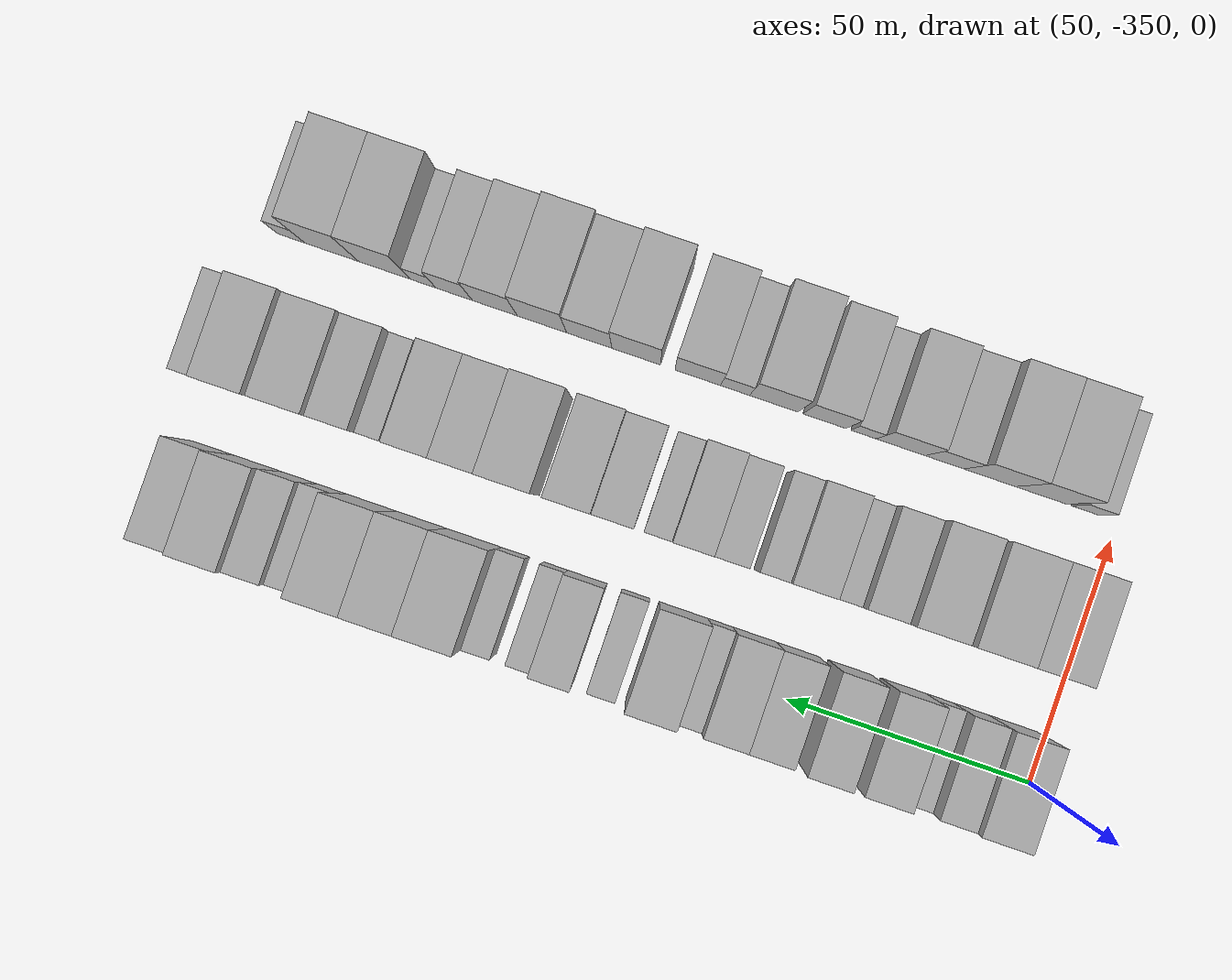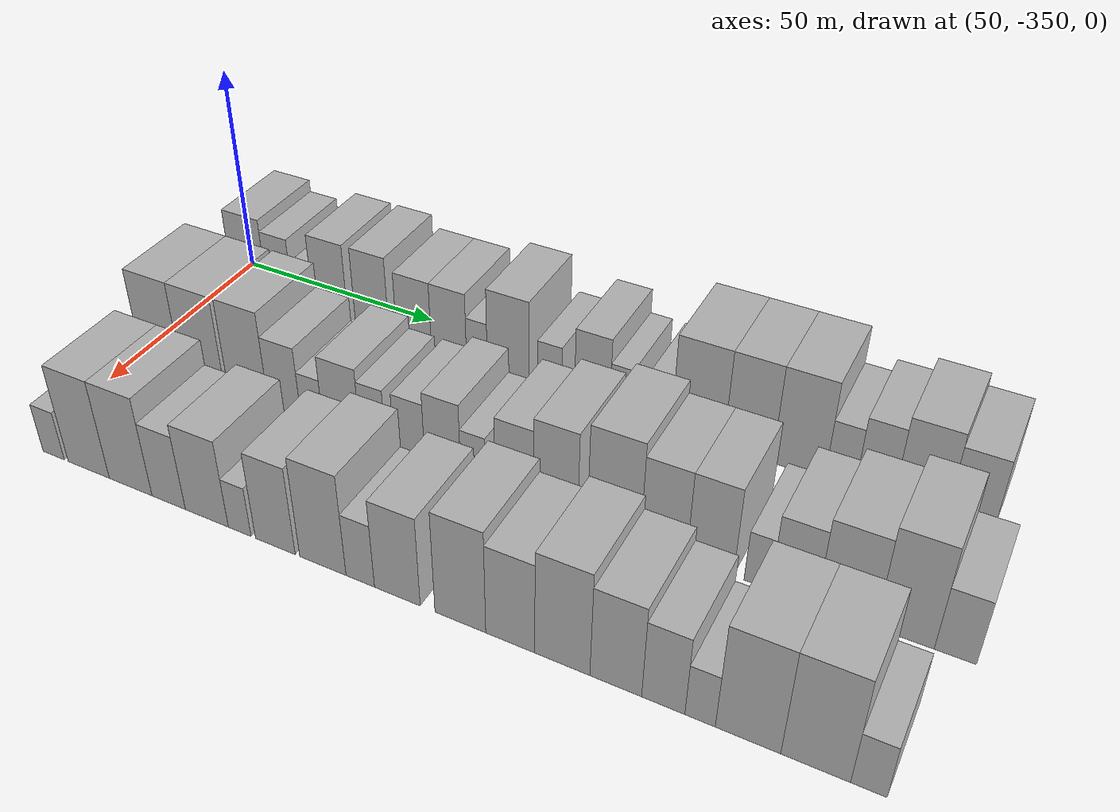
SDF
<sdf version="1.6">
 <world name="default">
  <model name="building_1">
   <static>1</static>
   <pose>50.0000 -343.0452 0 0.000000 0.000000 0.000000</pose>
   <link name="link">
    <pose>0 0 10.50 0 0 0</pose>
    <collision name="collision"><geometry><box><size>20.0000 9.9096 21.0000</size></box></geometry></collision>
    <visual name="visual">
     <cast_shadows>0</cast_shadows>
     <geometry><box><size>20.0000 9.9096 21.0000</size></box></geometry>
     <material>
      <script>
       <uri>model://HANNAS_wall/materials/scripts</uri>
       <uri>model://HANNAS_wall/materials/textures</uri>
       <name>vrc/HANNAS_wall</name>
      </script>
     </material>
    </visual>
   </link>
  </model>
  <model name="building_2">
   <static>1</static>
   <pose>50.0000 -334.4748 0 0.000000 0.000000 0.000000</pose>
   <link name="link">
    <pose>0 0 9.00 0 0 0</pose>
    <collision name="collision"><geometry><box><size>20.0000 7.2314 18.0000</size></box></geometry></collision>
    <visual name="visual">
     <cast_shadows>0</cast_shadows>
     <geometry><box><size>20.0000 7.2314 18.0000</size></box></geometry>
     <material>
      <script>
       <uri>model://HANNAS_wall/materials/scripts</uri>
       <uri>model://HANNAS_wall/materials/textures</uri>
       <name>vrc/HANNAS_wall</name>
      </script>
     </material>
    </visual>
   </link>
  </model>
  <model name="building_3">
   <static>1</static>
   <pose>50.0000 -328.0343 0 0.000000 0.000000 0.000000</pose>
   <link name="link">
    <pose>0 0 6.00 0 0 0</pose>
    <collision name="collision"><geometry><box><size>20.0000 5.6495 12.0000</size></box></geometry></collision>
    <visual name="visual">
     <cast_shadows>0</cast_shadows>
     <geometry><box><size>20.0000 5.6495 12.0000</size></box></geometry>
     <material>
      <script>
       <uri>model://HANNAS_wall/materials/scripts</uri>
       <uri>model://HANNAS_wall/materials/textures</uri>
       <name>vrc/HANNAS_wall</name>
      </script>
     </material>
    </visual>
   </link>
  </model>
  <model name="building_4">
   <static>1</static>
   <pose>50.0000 -320.5536 0 0.000000 0.000000 0.000000</pose>
   <link name="link">
    <pose>0 0 10.50 0 0 0</pose>
    <collision name="collision"><geometry><box><size>20.0000 9.3121 21.0000</size></box></geometry></collision>
    <visual name="visual">
     <cast_shadows>0</cast_shadows>
     <geometry><box><size>20.0000 9.3121 21.0000</size></box></geometry>
     <material>
      <script>
       <uri>model://HANNAS_wall/materials/scripts</uri>
       <uri>model://HANNAS_wall/materials/textures</uri>
       <name>vrc/HANNAS_wall</name>
      </script>
     </material>
    </visual>
   </link>
  </model>
  <model name="building_5">
   <static>1</static>
   <pose>50.0000 -309.4769 0 0.000000 0.000000 0.000000</pose>
   <link name="link">
    <pose>0 0 10.50 0 0 0</pose>
    <collision name="collision"><geometry><box><size>20.0000 8.8412 21.0000</size></box></geometry></collision>
    <visual name="visual">
     <cast_shadows>0</cast_shadows>
     <geometry><box><size>20.0000 8.8412 21.0000</size></box></geometry>
     <material>
      <script>
       <uri>model://HANNAS_wall/materials/scripts</uri>
       <uri>model://HANNAS_wall/materials/textures</uri>
       <name>vrc/HANNAS_wall</name>
      </script>
     </material>
    </visual>
   </link>
  </model>
  <model name="building_6">
   <static>1</static>
   <pose>50.0000 -298.6147 0 0.000000 0.000000 0.000000</pose>
   <link name="link">
    <pose>0 0 9.00 0 0 0</pose>
    <collision name="collision"><geometry><box><size>20.0000 8.8832 18.0000</size></box></geometry></collision>
    <visual name="visual">
     <cast_shadows>0</cast_shadows>
     <geometry><box><size>20.0000 8.8832 18.0000</size></box></geometry>
     <material>
      <script>
       <uri>model://HANNAS_wall/materials/scripts</uri>
       <uri>model://HANNAS_wall/materials/textures</uri>
       <name>vrc/HANNAS_wall</name>
      </script>
     </material>
    </visual>
   </link>
  </model>
  <model name="building_7">
   <static>1</static>
   <pose>50.0000 -289.7576 0 0.000000 0.000000 0.000000</pose>
   <link name="link">
    <pose>0 0 9.00 0 0 0</pose>
    <collision name="collision"><geometry><box><size>20.0000 8.8311 18.0000</size></box></geometry></collision>
    <visual name="visual">
     <cast_shadows>0</cast_shadows>
     <geometry><box><size>20.0000 8.8311 18.0000</size></box></geometry>
     <material>
      <script>
       <uri>model://HANNAS_wall/materials/scripts</uri>
       <uri>model://HANNAS_wall/materials/textures</uri>
       <name>vrc/HANNAS_wall</name>
      </script>
     </material>
    </visual>
   </link>
  </model>
  <model name="building_8">
   <static>1</static>
   <pose>50.0000 -282.7856 0 0.000000 0.000000 0.000000</pose>
   <link name="link">
    <pose>0 0 6.00 0 0 0</pose>
    <collision name="collision"><geometry><box><size>20.0000 5.1130 12.0000</size></box></geometry></collision>
    <visual name="visual">
     <cast_shadows>0</cast_shadows>
     <geometry><box><size>20.0000 5.1130 12.0000</size></box></geometry>
     <material>
      <script>
       <uri>model://HANNAS_wall/materials/scripts</uri>
       <uri>model://HANNAS_wall/materials/textures</uri>
       <name>vrc/HANNAS_wall</name>
      </script>
     </material>
    </visual>
   </link>
  </model>
  <model name="building_9">
   <static>1</static>
   <pose>50.0000 -275.1807 0 0.000000 0.000000 0.000000</pose>
   <link name="link">
    <pose>0 0 10.50 0 0 0</pose>
    <collision name="collision"><geometry><box><size>20.0000 10.0968 21.0000</size></box></geometry></collision>
    <visual name="visual">
     <cast_shadows>0</cast_shadows>
     <geometry><box><size>20.0000 10.0968 21.0000</size></box></geometry>
     <material>
      <script>
       <uri>model://HANNAS_wall/materials/scripts</uri>
       <uri>model://HANNAS_wall/materials/textures</uri>
       <name>vrc/HANNAS_wall</name>
      </script>
     </material>
    </visual>
   </link>
  </model>
  <model name="building_10">
   <static>1</static>
   <pose>50.0000 -265.2949 0 0.000000 0.000000 0.000000</pose>
   <link name="link">
    <pose>0 0 6.00 0 0 0</pose>
    <collision name="collision"><geometry><box><size>20.0000 5.6747 12.0000</size></box></geometry></collision>
    <visual name="visual">
     <cast_shadows>0</cast_shadows>
     <geometry><box><size>20.0000 5.6747 12.0000</size></box></geometry>
     <material>
      <script>
       <uri>model://HANNAS_wall/materials/scripts</uri>
       <uri>model://HANNAS_wall/materials/textures</uri>
       <name>vrc/HANNAS_wall</name>
      </script>
     </material>
    </visual>
   </link>
  </model>
  <model name="building_11">
   <static>1</static>
   <pose>50.0000 -255.3975 0 0.000000 0.000000 0.000000</pose>
   <link name="link">
    <pose>0 0 9.00 0 0 0</pose>
    <collision name="collision"><geometry><box><size>20.0000 8.1202 18.0000</size></box></geometry></collision>
    <visual name="visual">
     <cast_shadows>0</cast_shadows>
     <geometry><box><size>20.0000 8.1202 18.0000</size></box></geometry>
     <material>
      <script>
       <uri>model://HANNAS_wall/materials/scripts</uri>
       <uri>model://HANNAS_wall/materials/textures</uri>
       <name>vrc/HANNAS_wall</name>
      </script>
     </material>
    </visual>
   </link>
  </model>
  <model name="building_12">
   <static>1</static>
   <pose>50.0000 -248.8593 0 0.000000 0.000000 0.000000</pose>
   <link name="link">
    <pose>0 0 6.00 0 0 0</pose>
    <collision name="collision"><geometry><box><size>20.0000 4.9560 12.0000</size></box></geometry></collision>
    <visual name="visual">
     <cast_shadows>0</cast_shadows>
     <geometry><box><size>20.0000 4.9560 12.0000</size></box></geometry>
     <material>
      <script>
       <uri>model://HANNAS_wall/materials/scripts</uri>
       <uri>model://HANNAS_wall/materials/textures</uri>
       <name>vrc/HANNAS_wall</name>
      </script>
     </material>
    </visual>
   </link>
  </model>
  <model name="building_13">
   <static>1</static>
   <pose>50.0000 -240.5026 0 0.000000 0.000000 0.000000</pose>
   <link name="link">
    <pose>0 0 6.00 0 0 0</pose>
    <collision name="collision"><geometry><box><size>20.0000 5.7574 12.0000</size></box></geometry></collision>
    <visual name="visual">
     <cast_shadows>0</cast_shadows>
     <geometry><box><size>20.0000 5.7574 12.0000</size></box></geometry>
     <material>
      <script>
       <uri>model://HANNAS_wall/materials/scripts</uri>
       <uri>model://HANNAS_wall/materials/textures</uri>
       <name>vrc/HANNAS_wall</name>
      </script>
     </material>
    </visual>
   </link>
  </model>
  <model name="building_14">
   <static>1</static>
   <pose>50.0000 -231.9556 0 0.000000 0.000000 0.000000</pose>
   <link name="link">
    <pose>0 0 12.00 0 0 0</pose>
    <collision name="collision"><geometry><box><size>20.0000 11.3367 24.0000</size></box></geometry></collision>
    <visual name="visual">
     <cast_shadows>0</cast_shadows>
     <geometry><box><size>20.0000 11.3367 24.0000</size></box></geometry>
     <material>
      <script>
       <uri>model://HANNAS_wall/materials/scripts</uri>
       <uri>model://HANNAS_wall/materials/textures</uri>
       <name>vrc/HANNAS_wall</name>
      </script>
     </material>
    </visual>
   </link>
  </model>
  <model name="building_15">
   <static>1</static>
   <pose>50.0000 -221.1901 0 0.000000 0.000000 0.000000</pose>
   <link name="link">
    <pose>0 0 12.00 0 0 0</pose>
    <collision name="collision"><geometry><box><size>20.0000 10.1943 24.0000</size></box></geometry></collision>
    <visual name="visual">
     <cast_shadows>0</cast_shadows>
     <geometry><box><size>20.0000 10.1943 24.0000</size></box></geometry>
     <material>
      <script>
       <uri>model://HANNAS_wall/materials/scripts</uri>
       <uri>model://HANNAS_wall/materials/textures</uri>
       <name>vrc/HANNAS_wall</name>
      </script>
     </material>
    </visual>
   </link>
  </model>
  <model name="building_16">
   <static>1</static>
   <pose>50.0000 -210.7837 0 0.000000 0.000000 0.000000</pose>
   <link name="link">
    <pose>0 0 12.00 0 0 0</pose>
    <collision name="collision"><geometry><box><size>20.0000 10.6183 24.0000</size></box></geometry></collision>
    <visual name="visual">
     <cast_shadows>0</cast_shadows>
     <geometry><box><size>20.0000 10.6183 24.0000</size></box></geometry>
     <material>
      <script>
       <uri>model://HANNAS_wall/materials/scripts</uri>
       <uri>model://HANNAS_wall/materials/textures</uri>
       <name>vrc/HANNAS_wall</name>
      </script>
     </material>
    </visual>
   </link>
  </model>
  <model name="building_17">
   <static>1</static>
   <pose>50.0000 -202.4725 0 0.000000 0.000000 0.000000</pose>
   <link name="link">
    <pose>0 0 7.50 0 0 0</pose>
    <collision name="collision"><geometry><box><size>20.0000 6.0041 15.0000</size></box></geometry></collision>
    <visual name="visual">
     <cast_shadows>0</cast_shadows>
     <geometry><box><size>20.0000 6.0041 15.0000</size></box></geometry>
     <material>
      <script>
       <uri>model://HANNAS_wall/materials/scripts</uri>
       <uri>model://HANNAS_wall/materials/textures</uri>
       <name>vrc/HANNAS_wall</name>
      </script>
     </material>
    </visual>
   </link>
  </model>
  <model name="building_18">
   <static>1</static>
   <pose>50.0000 -195.7502 0 0.000000 0.000000 0.000000</pose>
   <link name="link">
    <pose>0 0 9.00 0 0 0</pose>
    <collision name="collision"><geometry><box><size>20.0000 7.4406 18.0000</size></box></geometry></collision>
    <visual name="visual">
     <cast_shadows>0</cast_shadows>
     <geometry><box><size>20.0000 7.4406 18.0000</size></box></geometry>
     <material>
      <script>
       <uri>model://HANNAS_wall/materials/scripts</uri>
       <uri>model://HANNAS_wall/materials/textures</uri>
       <name>vrc/HANNAS_wall</name>
      </script>
     </material>
    </visual>
   </link>
  </model>
  <model name="building_19">
   <static>1</static>
   <pose>50.0000 -187.0069 0 0.000000 0.000000 0.000000</pose>
   <link name="link">
    <pose>0 0 10.50 0 0 0</pose>
    <collision name="collision"><geometry><box><size>20.0000 10.0460 21.0000</size></box></geometry></collision>
    <visual name="visual">
     <cast_shadows>0</cast_shadows>
     <geometry><box><size>20.0000 10.0460 21.0000</size></box></geometry>
     <material>
      <script>
       <uri>model://HANNAS_wall/materials/scripts</uri>
       <uri>model://HANNAS_wall/materials/textures</uri>
       <name>vrc/HANNAS_wall</name>
      </script>
     </material>
    </visual>
   </link>
  </model>
  <model name="building_20">
   <static>1</static>
   <pose>50.0000 -177.6431 0 0.000000 0.000000 0.000000</pose>
   <link name="link">
    <pose>0 0 9.00 0 0 0</pose>
    <collision name="collision"><geometry><box><size>20.0000 8.6817 18.0000</size></box></geometry></collision>
    <visual name="visual">
     <cast_shadows>0</cast_shadows>
     <geometry><box><size>20.0000 8.6817 18.0000</size></box></geometry>
     <material>
      <script>
       <uri>model://HANNAS_wall/materials/scripts</uri>
       <uri>model://HANNAS_wall/materials/textures</uri>
       <name>vrc/HANNAS_wall</name>
      </script>
     </material>
    </visual>
   </link>
  </model>
  <model name="building_80">
   <static>1</static>
   <pose>82.0000 -342.5080 0 0.000000 0.000000 0.000000</pose>
   <link name="link">
    <pose>0 0 12.00 0 0 0</pose>
    <collision name="collision"><geometry><box><size>20.0000 10.9841 24.0000</size></box></geometry></collision>
    <visual name="visual">
     <cast_shadows>0</cast_shadows>
     <geometry><box><size>20.0000 10.9841 24.0000</size></box></geometry>
     <material>
      <script>
       <uri>model://HANNAS_wall/materials/scripts</uri>
       <uri>model://HANNAS_wall/materials/textures</uri>
       <name>vrc/HANNAS_wall</name>
      </script>
     </material>
    </visual>
   </link>
  </model>
  <model name="building_81">
   <static>1</static>
   <pose>82.0000 -331.3608 0 0.000000 0.000000 0.000000</pose>
   <link name="link">
    <pose>0 0 12.00 0 0 0</pose>
    <collision name="collision"><geometry><box><size>20.0000 11.3103 24.0000</size></box></geometry></collision>
    <visual name="visual">
     <cast_shadows>0</cast_shadows>
     <geometry><box><size>20.0000 11.3103 24.0000</size></box></geometry>
     <material>
      <script>
       <uri>model://HANNAS_wall/materials/scripts</uri>
       <uri>model://HANNAS_wall/materials/textures</uri>
       <name>vrc/HANNAS_wall</name>
      </script>
     </material>
    </visual>
   </link>
  </model>
  <model name="building_82">
   <static>1</static>
   <pose>82.0000 -319.5264 0 0.000000 0.000000 0.000000</pose>
   <link name="link">
    <pose>0 0 12.00 0 0 0</pose>
    <collision name="collision"><geometry><box><size>20.0000 10.3584 24.0000</size></box></geometry></collision>
    <visual name="visual">
     <cast_shadows>0</cast_shadows>
     <geometry><box><size>20.0000 10.3584 24.0000</size></box></geometry>
     <material>
      <script>
       <uri>model://HANNAS_wall/materials/scripts</uri>
       <uri>model://HANNAS_wall/materials/textures</uri>
       <name>vrc/HANNAS_wall</name>
      </script>
     </material>
    </visual>
   </link>
  </model>
  <model name="building_83">
   <static>1</static>
   <pose>82.0000 -310.2610 0 0.000000 0.000000 0.000000</pose>
   <link name="link">
    <pose>0 0 9.00 0 0 0</pose>
    <collision name="collision"><geometry><box><size>20.0000 8.1723 18.0000</size></box></geometry></collision>
    <visual name="visual">
     <cast_shadows>0</cast_shadows>
     <geometry><box><size>20.0000 8.1723 18.0000</size></box></geometry>
     <material>
      <script>
       <uri>model://HANNAS_wall/materials/scripts</uri>
       <uri>model://HANNAS_wall/materials/textures</uri>
       <name>vrc/HANNAS_wall</name>
      </script>
     </material>
    </visual>
   </link>
  </model>
  <model name="building_84">
   <static>1</static>
   <pose>82.0000 -303.4239 0 0.000000 0.000000 0.000000</pose>
   <link name="link">
    <pose>0 0 6.00 0 0 0</pose>
    <collision name="collision"><geometry><box><size>20.0000 5.5020 12.0000</size></box></geometry></collision>
    <visual name="visual">
     <cast_shadows>0</cast_shadows>
     <geometry><box><size>20.0000 5.5020 12.0000</size></box></geometry>
     <material>
      <script>
       <uri>model://HANNAS_wall/materials/scripts</uri>
       <uri>model://HANNAS_wall/materials/textures</uri>
       <name>vrc/HANNAS_wall</name>
      </script>
     </material>
    </visual>
   </link>
  </model>
  <model name="building_85">
   <static>1</static>
   <pose>82.0000 -296.1820 0 0.000000 0.000000 0.000000</pose>
   <link name="link">
    <pose>0 0 9.00 0 0 0</pose>
    <collision name="collision"><geometry><box><size>20.0000 8.9817 18.0000</size></box></geometry></collision>
    <visual name="visual">
     <cast_shadows>0</cast_shadows>
     <geometry><box><size>20.0000 8.9817 18.0000</size></box></geometry>
     <material>
      <script>
       <uri>model://HANNAS_wall/materials/scripts</uri>
       <uri>model://HANNAS_wall/materials/textures</uri>
       <name>vrc/HANNAS_wall</name>
      </script>
     </material>
    </visual>
   </link>
  </model>
  <model name="building_86">
   <static>1</static>
   <pose>82.0000 -288.6605 0 0.000000 0.000000 0.000000</pose>
   <link name="link">
    <pose>0 0 7.50 0 0 0</pose>
    <collision name="collision"><geometry><box><size>20.0000 6.0614 15.0000</size></box></geometry></collision>
    <visual name="visual">
     <cast_shadows>0</cast_shadows>
     <geometry><box><size>20.0000 6.0614 15.0000</size></box></geometry>
     <material>
      <script>
       <uri>model://HANNAS_wall/materials/scripts</uri>
       <uri>model://HANNAS_wall/materials/textures</uri>
       <name>vrc/HANNAS_wall</name>
      </script>
     </material>
    </visual>
   </link>
  </model>
  <model name="building_87">
   <static>1</static>
   <pose>82.0000 -280.0984 0 0.000000 0.000000 0.000000</pose>
   <link name="link">
    <pose>0 0 7.50 0 0 0</pose>
    <collision name="collision"><geometry><box><size>20.0000 7.0628 15.0000</size></box></geometry></collision>
    <visual name="visual">
     <cast_shadows>0</cast_shadows>
     <geometry><box><size>20.0000 7.0628 15.0000</size></box></geometry>
     <material>
      <script>
       <uri>model://HANNAS_wall/materials/scripts</uri>
       <uri>model://HANNAS_wall/materials/textures</uri>
       <name>vrc/HANNAS_wall</name>
      </script>
     </material>
    </visual>
   </link>
  </model>
  <model name="building_88">
   <static>1</static>
   <pose>82.0000 -272.5216 0 0.000000 0.000000 0.000000</pose>
   <link name="link">
    <pose>0 0 9.00 0 0 0</pose>
    <collision name="collision"><geometry><box><size>20.0000 8.0907 18.0000</size></box></geometry></collision>
    <visual name="visual">
     <cast_shadows>0</cast_shadows>
     <geometry><box><size>20.0000 8.0907 18.0000</size></box></geometry>
     <material>
      <script>
       <uri>model://HANNAS_wall/materials/scripts</uri>
       <uri>model://HANNAS_wall/materials/textures</uri>
       <name>vrc/HANNAS_wall</name>
      </script>
     </material>
    </visual>
   </link>
  </model>
  <model name="building_89">
   <static>1</static>
   <pose>82.0000 -265.6881 0 0.000000 0.000000 0.000000</pose>
   <link name="link">
    <pose>0 0 6.00 0 0 0</pose>
    <collision name="collision"><geometry><box><size>20.0000 5.5764 12.0000</size></box></geometry></collision>
    <visual name="visual">
     <cast_shadows>0</cast_shadows>
     <geometry><box><size>20.0000 5.5764 12.0000</size></box></geometry>
     <material>
      <script>
       <uri>model://HANNAS_wall/materials/scripts</uri>
       <uri>model://HANNAS_wall/materials/textures</uri>
       <name>vrc/HANNAS_wall</name>
      </script>
     </material>
    </visual>
   </link>
  </model>
  <model name="building_90">
   <static>1</static>
   <pose>82.0000 -256.7546 0 0.000000 0.000000 0.000000</pose>
   <link name="link">
    <pose>0 0 9.00 0 0 0</pose>
    <collision name="collision"><geometry><box><size>20.0000 8.2907 18.0000</size></box></geometry></collision>
    <visual name="visual">
     <cast_shadows>0</cast_shadows>
     <geometry><box><size>20.0000 8.2907 18.0000</size></box></geometry>
     <material>
      <script>
       <uri>model://HANNAS_wall/materials/scripts</uri>
       <uri>model://HANNAS_wall/materials/textures</uri>
       <name>vrc/HANNAS_wall</name>
      </script>
     </material>
    </visual>
   </link>
  </model>
  <model name="building_91">
   <static>1</static>
   <pose>82.0000 -247.9274 0 0.000000 0.000000 0.000000</pose>
   <link name="link">
    <pose>0 0 10.50 0 0 0</pose>
    <collision name="collision"><geometry><box><size>20.0000 9.3637 21.0000</size></box></geometry></collision>
    <visual name="visual">
     <cast_shadows>0</cast_shadows>
     <geometry><box><size>20.0000 9.3637 21.0000</size></box></geometry>
     <material>
      <script>
       <uri>model://HANNAS_wall/materials/scripts</uri>
       <uri>model://HANNAS_wall/materials/textures</uri>
       <name>vrc/HANNAS_wall</name>
      </script>
     </material>
    </visual>
   </link>
  </model>
  <model name="building_92">
   <static>1</static>
   <pose>82.0000 -235.8393 0 0.000000 0.000000 0.000000</pose>
   <link name="link">
    <pose>0 0 12.00 0 0 0</pose>
    <collision name="collision"><geometry><box><size>20.0000 10.8125 24.0000</size></box></geometry></collision>
    <visual name="visual">
     <cast_shadows>0</cast_shadows>
     <geometry><box><size>20.0000 10.8125 24.0000</size></box></geometry>
     <material>
      <script>
       <uri>model://HANNAS_wall/materials/scripts</uri>
       <uri>model://HANNAS_wall/materials/textures</uri>
       <name>vrc/HANNAS_wall</name>
      </script>
     </material>
    </visual>
   </link>
  </model>
  <model name="building_93">
   <static>1</static>
   <pose>82.0000 -225.8614 0 0.000000 0.000000 0.000000</pose>
   <link name="link">
    <pose>0 0 10.50 0 0 0</pose>
    <collision name="collision"><geometry><box><size>20.0000 9.1434 21.0000</size></box></geometry></collision>
    <visual name="visual">
     <cast_shadows>0</cast_shadows>
     <geometry><box><size>20.0000 9.1434 21.0000</size></box></geometry>
     <material>
      <script>
       <uri>model://HANNAS_wall/materials/scripts</uri>
       <uri>model://HANNAS_wall/materials/textures</uri>
       <name>vrc/HANNAS_wall</name>
      </script>
     </material>
    </visual>
   </link>
  </model>
  <model name="building_94">
   <static>1</static>
   <pose>82.0000 -216.7778 0 0.000000 0.000000 0.000000</pose>
   <link name="link">
    <pose>0 0 10.50 0 0 0</pose>
    <collision name="collision"><geometry><box><size>20.0000 9.0239 21.0000</size></box></geometry></collision>
    <visual name="visual">
     <cast_shadows>0</cast_shadows>
     <geometry><box><size>20.0000 9.0239 21.0000</size></box></geometry>
     <material>
      <script>
       <uri>model://HANNAS_wall/materials/scripts</uri>
       <uri>model://HANNAS_wall/materials/textures</uri>
       <name>vrc/HANNAS_wall</name>
      </script>
     </material>
    </visual>
   </link>
  </model>
  <model name="building_95">
   <static>1</static>
   <pose>82.0000 -207.7935 0 0.000000 0.000000 0.000000</pose>
   <link name="link">
    <pose>0 0 6.00 0 0 0</pose>
    <collision name="collision"><geometry><box><size>20.0000 4.9447 12.0000</size></box></geometry></collision>
    <visual name="visual">
     <cast_shadows>0</cast_shadows>
     <geometry><box><size>20.0000 4.9447 12.0000</size></box></geometry>
     <material>
      <script>
       <uri>model://HANNAS_wall/materials/scripts</uri>
       <uri>model://HANNAS_wall/materials/textures</uri>
       <name>vrc/HANNAS_wall</name>
      </script>
     </material>
    </visual>
   </link>
  </model>
  <model name="building_96">
   <static>1</static>
   <pose>82.0000 -201.1138 0 0.000000 0.000000 0.000000</pose>
   <link name="link">
    <pose>0 0 9.00 0 0 0</pose>
    <collision name="collision"><geometry><box><size>20.0000 8.4147 18.0000</size></box></geometry></collision>
    <visual name="visual">
     <cast_shadows>0</cast_shadows>
     <geometry><box><size>20.0000 8.4147 18.0000</size></box></geometry>
     <material>
      <script>
       <uri>model://HANNAS_wall/materials/scripts</uri>
       <uri>model://HANNAS_wall/materials/textures</uri>
       <name>vrc/HANNAS_wall</name>
      </script>
     </material>
    </visual>
   </link>
  </model>
  <model name="building_97">
   <static>1</static>
   <pose>82.0000 -191.6605 0 0.000000 0.000000 0.000000</pose>
   <link name="link">
    <pose>0 0 10.50 0 0 0</pose>
    <collision name="collision"><geometry><box><size>20.0000 10.4920 21.0000</size></box></geometry></collision>
    <visual name="visual">
     <cast_shadows>0</cast_shadows>
     <geometry><box><size>20.0000 10.4920 21.0000</size></box></geometry>
     <material>
      <script>
       <uri>model://HANNAS_wall/materials/scripts</uri>
       <uri>model://HANNAS_wall/materials/textures</uri>
       <name>vrc/HANNAS_wall</name>
      </script>
     </material>
    </visual>
   </link>
  </model>
  <model name="building_98">
   <static>1</static>
   <pose>82.0000 -181.3536 0 0.000000 0.000000 0.000000</pose>
   <link name="link">
    <pose>0 0 12.00 0 0 0</pose>
    <collision name="collision"><geometry><box><size>20.0000 10.1219 24.0000</size></box></geometry></collision>
    <visual name="visual">
     <cast_shadows>0</cast_shadows>
     <geometry><box><size>20.0000 10.1219 24.0000</size></box></geometry>
     <material>
      <script>
       <uri>model://HANNAS_wall/materials/scripts</uri>
       <uri>model://HANNAS_wall/materials/textures</uri>
       <name>vrc/HANNAS_wall</name>
      </script>
     </material>
    </visual>
   </link>
  </model>
  <model name="building_99">
   <static>1</static>
   <pose>82.0000 -172.7580 0 0.000000 0.000000 0.000000</pose>
   <link name="link">
    <pose>0 0 7.50 0 0 0</pose>
    <collision name="collision"><geometry><box><size>20.0000 7.0692 15.0000</size></box></geometry></collision>
    <visual name="visual">
     <cast_shadows>0</cast_shadows>
     <geometry><box><size>20.0000 7.0692 15.0000</size></box></geometry>
     <material>
      <script>
       <uri>model://HANNAS_wall/materials/scripts</uri>
       <uri>model://HANNAS_wall/materials/textures</uri>
       <name>vrc/HANNAS_wall</name>
      </script>
     </material>
    </visual>
   </link>
  </model>
  <model name="building_159">
   <static>1</static>
   <pose>114.0000 -343.2105 0 0.000000 0.000000 0.000000</pose>
   <link name="link">
    <pose>0 0 6.00 0 0 0</pose>
    <collision name="collision"><geometry><box><size>20.0000 5.5791 12.0000</size></box></geometry></collision>
    <visual name="visual">
     <cast_shadows>0</cast_shadows>
     <geometry><box><size>20.0000 5.5791 12.0000</size></box></geometry>
     <material>
      <script>
       <uri>model://HANNAS_wall/materials/scripts</uri>
       <uri>model://HANNAS_wall/materials/textures</uri>
       <name>vrc/HANNAS_wall</name>
      </script>
     </material>
    </visual>
   </link>
  </model>
  <model name="building_160">
   <static>1</static>
   <pose>114.0000 -334.1525 0 0.000000 0.000000 0.000000</pose>
   <link name="link">
    <pose>0 0 12.00 0 0 0</pose>
    <collision name="collision"><geometry><box><size>20.0000 10.5370 24.0000</size></box></geometry></collision>
    <visual name="visual">
     <cast_shadows>0</cast_shadows>
     <geometry><box><size>20.0000 10.5370 24.0000</size></box></geometry>
     <material>
      <script>
       <uri>model://HANNAS_wall/materials/scripts</uri>
       <uri>model://HANNAS_wall/materials/textures</uri>
       <name>vrc/HANNAS_wall</name>
      </script>
     </material>
    </visual>
   </link>
  </model>
  <model name="building_161">
   <static>1</static>
   <pose>114.0000 -323.5664 0 0.000000 0.000000 0.000000</pose>
   <link name="link">
    <pose>0 0 12.00 0 0 0</pose>
    <collision name="collision"><geometry><box><size>20.0000 10.6351 24.0000</size></box></geometry></collision>
    <visual name="visual">
     <cast_shadows>0</cast_shadows>
     <geometry><box><size>20.0000 10.6351 24.0000</size></box></geometry>
     <material>
      <script>
       <uri>model://HANNAS_wall/materials/scripts</uri>
       <uri>model://HANNAS_wall/materials/textures</uri>
       <name>vrc/HANNAS_wall</name>
      </script>
     </material>
    </visual>
   </link>
  </model>
  <model name="building_162">
   <static>1</static>
   <pose>114.0000 -314.2177 0 0.000000 0.000000 0.000000</pose>
   <link name="link">
    <pose>0 0 9.00 0 0 0</pose>
    <collision name="collision"><geometry><box><size>20.0000 8.0623 18.0000</size></box></geometry></collision>
    <visual name="visual">
     <cast_shadows>0</cast_shadows>
     <geometry><box><size>20.0000 8.0623 18.0000</size></box></geometry>
     <material>
      <script>
       <uri>model://HANNAS_wall/materials/scripts</uri>
       <uri>model://HANNAS_wall/materials/textures</uri>
       <name>vrc/HANNAS_wall</name>
      </script>
     </material>
    </visual>
   </link>
  </model>
  <model name="building_163">
   <static>1</static>
   <pose>114.0000 -305.1220 0 0.000000 0.000000 0.000000</pose>
   <link name="link">
    <pose>0 0 10.50 0 0 0</pose>
    <collision name="collision"><geometry><box><size>20.0000 10.1291 21.0000</size></box></geometry></collision>
    <visual name="visual">
     <cast_shadows>0</cast_shadows>
     <geometry><box><size>20.0000 10.1291 21.0000</size></box></geometry>
     <material>
      <script>
       <uri>model://HANNAS_wall/materials/scripts</uri>
       <uri>model://HANNAS_wall/materials/textures</uri>
       <name>vrc/HANNAS_wall</name>
      </script>
     </material>
    </visual>
   </link>
  </model>
  <model name="building_164">
   <static>1</static>
   <pose>114.0000 -297.4424 0 0.000000 0.000000 0.000000</pose>
   <link name="link">
    <pose>0 0 6.00 0 0 0</pose>
    <collision name="collision"><geometry><box><size>20.0000 5.2300 12.0000</size></box></geometry></collision>
    <visual name="visual">
     <cast_shadows>0</cast_shadows>
     <geometry><box><size>20.0000 5.2300 12.0000</size></box></geometry>
     <material>
      <script>
       <uri>model://HANNAS_wall/materials/scripts</uri>
       <uri>model://HANNAS_wall/materials/textures</uri>
       <name>vrc/HANNAS_wall</name>
      </script>
     </material>
    </visual>
   </link>
  </model>
  <model name="building_165">
   <static>1</static>
   <pose>114.0000 -289.3650 0 0.000000 0.000000 0.000000</pose>
   <link name="link">
    <pose>0 0 10.50 0 0 0</pose>
    <collision name="collision"><geometry><box><size>20.0000 8.9248 21.0000</size></box></geometry></collision>
    <visual name="visual">
     <cast_shadows>0</cast_shadows>
     <geometry><box><size>20.0000 8.9248 21.0000</size></box></geometry>
     <material>
      <script>
       <uri>model://HANNAS_wall/materials/scripts</uri>
       <uri>model://HANNAS_wall/materials/textures</uri>
       <name>vrc/HANNAS_wall</name>
      </script>
     </material>
    </visual>
   </link>
  </model>
  <model name="building_166">
   <static>1</static>
   <pose>114.0000 -278.8662 0 0.000000 0.000000 0.000000</pose>
   <link name="link">
    <pose>0 0 12.00 0 0 0</pose>
    <collision name="collision"><geometry><box><size>20.0000 10.0728 24.0000</size></box></geometry></collision>
    <visual name="visual">
     <cast_shadows>0</cast_shadows>
     <geometry><box><size>20.0000 10.0728 24.0000</size></box></geometry>
     <material>
      <script>
       <uri>model://HANNAS_wall/materials/scripts</uri>
       <uri>model://HANNAS_wall/materials/textures</uri>
       <name>vrc/HANNAS_wall</name>
      </script>
     </material>
    </visual>
   </link>
  </model>
  <model name="building_167">
   <static>1</static>
   <pose>114.0000 -270.8047 0 0.000000 0.000000 0.000000</pose>
   <link name="link">
    <pose>0 0 7.50 0 0 0</pose>
    <collision name="collision"><geometry><box><size>20.0000 6.0502 15.0000</size></box></geometry></collision>
    <visual name="visual">
     <cast_shadows>0</cast_shadows>
     <geometry><box><size>20.0000 6.0502 15.0000</size></box></geometry>
     <material>
      <script>
       <uri>model://HANNAS_wall/materials/scripts</uri>
       <uri>model://HANNAS_wall/materials/textures</uri>
       <name>vrc/HANNAS_wall</name>
      </script>
     </material>
    </visual>
   </link>
  </model>
  <model name="building_168">
   <static>1</static>
   <pose>114.0000 -263.0518 0 0.000000 0.000000 0.000000</pose>
   <link name="link">
    <pose>0 0 10.50 0 0 0</pose>
    <collision name="collision"><geometry><box><size>20.0000 9.4556 21.0000</size></box></geometry></collision>
    <visual name="visual">
     <cast_shadows>0</cast_shadows>
     <geometry><box><size>20.0000 9.4556 21.0000</size></box></geometry>
     <material>
      <script>
       <uri>model://HANNAS_wall/materials/scripts</uri>
       <uri>model://HANNAS_wall/materials/textures</uri>
       <name>vrc/HANNAS_wall</name>
      </script>
     </material>
    </visual>
   </link>
  </model>
  <model name="building_169">
   <static>1</static>
   <pose>114.0000 -250.2794 0 0.000000 0.000000 0.000000</pose>
   <link name="link">
    <pose>0 0 12.00 0 0 0</pose>
    <collision name="collision"><geometry><box><size>20.0000 10.0891 24.0000</size></box></geometry></collision>
    <visual name="visual">
     <cast_shadows>0</cast_shadows>
     <geometry><box><size>20.0000 10.0891 24.0000</size></box></geometry>
     <material>
      <script>
       <uri>model://HANNAS_wall/materials/scripts</uri>
       <uri>model://HANNAS_wall/materials/textures</uri>
       <name>vrc/HANNAS_wall</name>
      </script>
     </material>
    </visual>
   </link>
  </model>
  <model name="building_170">
   <static>1</static>
   <pose>114.0000 -240.5362 0 0.000000 0.000000 0.000000</pose>
   <link name="link">
    <pose>0 0 10.50 0 0 0</pose>
    <collision name="collision"><geometry><box><size>20.0000 9.3975 21.0000</size></box></geometry></collision>
    <visual name="visual">
     <cast_shadows>0</cast_shadows>
     <geometry><box><size>20.0000 9.3975 21.0000</size></box></geometry>
     <material>
      <script>
       <uri>model://HANNAS_wall/materials/scripts</uri>
       <uri>model://HANNAS_wall/materials/textures</uri>
       <name>vrc/HANNAS_wall</name>
      </script>
     </material>
    </visual>
   </link>
  </model>
  <model name="building_171">
   <static>1</static>
   <pose>114.0000 -230.6898 0 0.000000 0.000000 0.000000</pose>
   <link name="link">
    <pose>0 0 12.00 0 0 0</pose>
    <collision name="collision"><geometry><box><size>20.0000 10.2953 24.0000</size></box></geometry></collision>
    <visual name="visual">
     <cast_shadows>0</cast_shadows>
     <geometry><box><size>20.0000 10.2953 24.0000</size></box></geometry>
     <material>
      <script>
       <uri>model://HANNAS_wall/materials/scripts</uri>
       <uri>model://HANNAS_wall/materials/textures</uri>
       <name>vrc/HANNAS_wall</name>
      </script>
     </material>
    </visual>
   </link>
  </model>
  <model name="building_172">
   <static>1</static>
   <pose>114.0000 -220.8705 0 0.000000 0.000000 0.000000</pose>
   <link name="link">
    <pose>0 0 10.50 0 0 0</pose>
    <collision name="collision"><geometry><box><size>20.0000 9.3433 21.0000</size></box></geometry></collision>
    <visual name="visual">
     <cast_shadows>0</cast_shadows>
     <geometry><box><size>20.0000 9.3433 21.0000</size></box></geometry>
     <material>
      <script>
       <uri>model://HANNAS_wall/materials/scripts</uri>
       <uri>model://HANNAS_wall/materials/textures</uri>
       <name>vrc/HANNAS_wall</name>
      </script>
     </material>
    </visual>
   </link>
  </model>
  <model name="building_173">
   <static>1</static>
   <pose>114.0000 -212.4121 0 0.000000 0.000000 0.000000</pose>
   <link name="link">
    <pose>0 0 9.00 0 0 0</pose>
    <collision name="collision"><geometry><box><size>20.0000 7.5736 18.0000</size></box></geometry></collision>
    <visual name="visual">
     <cast_shadows>0</cast_shadows>
     <geometry><box><size>20.0000 7.5736 18.0000</size></box></geometry>
     <material>
      <script>
       <uri>model://HANNAS_wall/materials/scripts</uri>
       <uri>model://HANNAS_wall/materials/textures</uri>
       <name>vrc/HANNAS_wall</name>
      </script>
     </material>
    </visual>
   </link>
  </model>
  <model name="building_174">
   <static>1</static>
   <pose>114.0000 -206.0173 0 0.000000 0.000000 0.000000</pose>
   <link name="link">
    <pose>0 0 6.00 0 0 0</pose>
    <collision name="collision"><geometry><box><size>20.0000 5.2159 12.0000</size></box></geometry></collision>
    <visual name="visual">
     <cast_shadows>0</cast_shadows>
     <geometry><box><size>20.0000 5.2159 12.0000</size></box></geometry>
     <material>
      <script>
       <uri>model://HANNAS_wall/materials/scripts</uri>
       <uri>model://HANNAS_wall/materials/textures</uri>
       <name>vrc/HANNAS_wall</name>
      </script>
     </material>
    </visual>
   </link>
  </model>
  <model name="building_175">
   <static>1</static>
   <pose>114.0000 -197.9499 0 0.000000 0.000000 0.000000</pose>
   <link name="link">
    <pose>0 0 12.00 0 0 0</pose>
    <collision name="collision"><geometry><box><size>20.0000 10.9189 24.0000</size></box></geometry></collision>
    <visual name="visual">
     <cast_shadows>0</cast_shadows>
     <geometry><box><size>20.0000 10.9189 24.0000</size></box></geometry>
     <material>
      <script>
       <uri>model://HANNAS_wall/materials/scripts</uri>
       <uri>model://HANNAS_wall/materials/textures</uri>
       <name>vrc/HANNAS_wall</name>
      </script>
     </material>
    </visual>
   </link>
  </model>
  <model name="building_176">
   <static>1</static>
   <pose>114.0000 -186.8944 0 0.000000 0.000000 0.000000</pose>
   <link name="link">
    <pose>0 0 12.00 0 0 0</pose>
    <collision name="collision"><geometry><box><size>20.0000 11.1920 24.0000</size></box></geometry></collision>
    <visual name="visual">
     <cast_shadows>0</cast_shadows>
     <geometry><box><size>20.0000 11.1920 24.0000</size></box></geometry>
     <material>
      <script>
       <uri>model://HANNAS_wall/materials/scripts</uri>
       <uri>model://HANNAS_wall/materials/textures</uri>
       <name>vrc/HANNAS_wall</name>
      </script>
     </material>
    </visual>
   </link>
  </model>
  <model name="building_177">
   <static>1</static>
   <pose>114.0000 -178.4571 0 0.000000 0.000000 0.000000</pose>
   <link name="link">
    <pose>0 0 6.00 0 0 0</pose>
    <collision name="collision"><geometry><box><size>20.0000 5.6827 12.0000</size></box></geometry></collision>
    <visual name="visual">
     <cast_shadows>0</cast_shadows>
     <geometry><box><size>20.0000 5.6827 12.0000</size></box></geometry>
     <material>
      <script>
       <uri>model://HANNAS_wall/materials/scripts</uri>
       <uri>model://HANNAS_wall/materials/textures</uri>
       <name>vrc/HANNAS_wall</name>
      </script>
     </material>
    </visual>
   </link>
  </model>
 </world>
</sdf>
